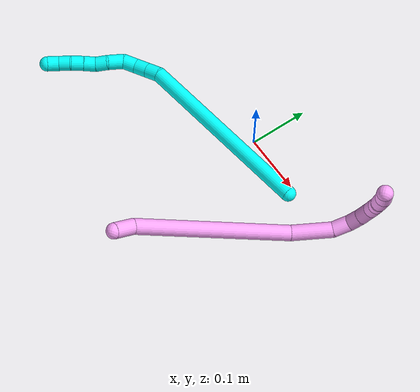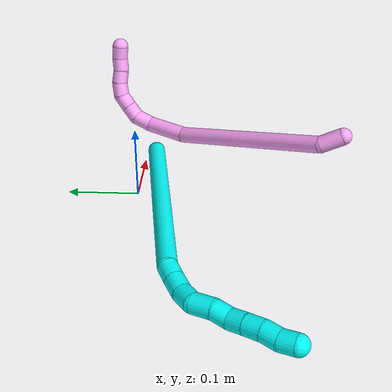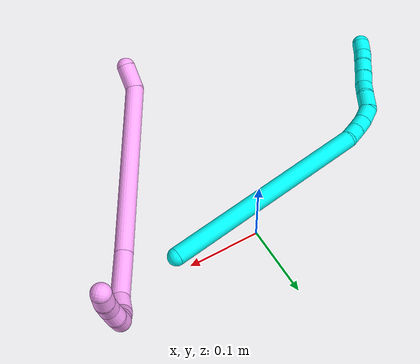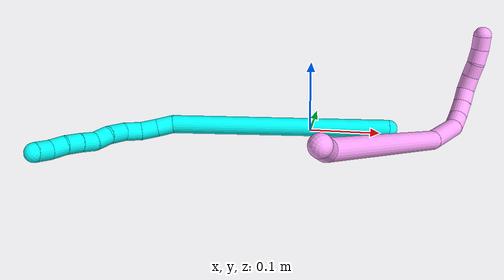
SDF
<sdf version="1.7">
 <world name="default">
  <model name="photoneo_s_sensor">
   <static>1</static>
   <pose>0 0 2 1.57079 1.57079 3.14159</pose>
   <link name="link">
    <inertial><mass>0.1</mass></inertial>
    <sensor name="sensor" type="depth">
     <update_rate>30</update_rate>
     <camera>
      <horizontal_fov>1.22</horizontal_fov>
      <image><width>1920</width><height>1200</height><format>B8G8R8</format></image>
      <clip><near>0.1</near><far>4</far></clip>
      <depth_camera><output>points</output></depth_camera>
     </camera>
     <plugin name="camera_plugin" filename="libgazebo_ros_depth_camera.so">
      <baseline>0.2</baseline>
      <alwaysOn>1</alwaysOn>
      <updateRate>0.0</updateRate>
      <cameraName>camera_ir</cameraName>
      <imageTopicName>/camera/color/image_raw</imageTopicName>
      <cameraInfoTopicName>/camera/color/camera_info</cameraInfoTopicName>
      <depthImageTopicName>/camera/depth/image_raw</depthImageTopicName>
      <depthImageCameraInfoTopicName>/camera/depth/camera_info</depthImageCameraInfoTopicName>
      <pointCloudTopicName>/camera/depth/points</pointCloudTopicName>
      <frameName>fr_optical</frameName>
      <pointCloudCutoff>0.1</pointCloudCutoff>
      <pointCloudCutoffMax>2.0</pointCloudCutoffMax>
      <distortionK1>0</distortionK1>
      <distortionK2>0</distortionK2>
      <distortionK3>0</distortionK3>
      <distortionT1>0</distortionT1>
      <distortionT2>0</distortionT2>
      <CxPrime>0</CxPrime>
      <Cx>0</Cx>
      <Cy>0</Cy>
      <focalLength>0</focalLength>
      <hackBaseline>0</hackBaseline>
     </plugin>
    </sensor>
   </link>
  </model>
  <model name="bin">
   <static>1</static>
   <link name="bottom">
    <collision name="collision-bottom">
     <pose>0 0 -0.01 0 -0 0</pose>
     <geometry><box><size>0.8 0.6 0.02</size></box></geometry>
     <surface>
      <friction><ode><mu>100</mu><mu2>100</mu2></ode></friction>
      <contact><collide_bitmask>65535</collide_bitmask></contact>
     </surface>
    </collision>
   </link>
   <link name="west_wall">
    <collision name="collision-west_wall">
     <pose>-0.41 0 0.1 0 -0 0</pose>
     <geometry><box><size>0.02 0.6 0.2</size></box></geometry>
     <surface>
      <friction><ode><mu>100</mu><mu2>100</mu2></ode></friction>
      <contact><collide_bitmask>65535</collide_bitmask></contact>
     </surface>
    </collision>
   </link>
   <link name="east_wall">
    <collision name="collision-east_wall">
     <pose>0.41 0 0.1 0 -0 0</pose>
     <geometry><box><size>0.02 0.6 0.2</size></box></geometry>
     <surface>
      <friction><ode><mu>100</mu><mu2>100</mu2></ode></friction>
      <contact><collide_bitmask>65535</collide_bitmask></contact>
     </surface>
    </collision>
   </link>
   <link name="south_wall">
    <collision name="collision-south_wall">
     <pose>0 -0.31 0.1 0 -0 0</pose>
     <geometry><box><size>0.8 0.02 0.2</size></box></geometry>
     <surface>
      <friction><ode><mu>100</mu><mu2>100</mu2></ode></friction>
      <contact><collide_bitmask>65535</collide_bitmask></contact>
     </surface>
    </collision>
   </link>
   <link name="north_wall">
    <collision name="collision-north_wall">
     <pose>0 0.31 0.1 0 -0 0</pose>
     <geometry><box><size>0.8 0.02 0.2</size></box></geometry>
     <surface>
      <friction><ode><mu>100</mu><mu2>100</mu2></ode></friction>
      <contact><collide_bitmask>65535</collide_bitmask></contact>
     </surface>
    </collision>
   </link>
  </model>
  <model name="3">
   <static>0</static>
   <link name="3">
    <collision name="collision-cylinder-e_1_1_4">
     <pose>-0.032639 -0.071654 0.129314 0.505994 -0.217286 -0.056384</pose>
     <geometry><cylinder><radius>0.0125</radius><length>0.302799</length></cylinder></geometry>
     <surface>
      <friction><ode><mu>1.16</mu><mu2>1.16</mu2><slip1>0</slip1><slip2>0</slip2></ode></friction>
      <contact><ode><kp>1e+06</kp><kd>1</kd><max_vel>0</max_vel><min_depth>0.001</min_depth></ode></contact>
     </surface>
    </collision>
    <visual name="visual-cylinder-e_1_1_4">
     <pose>-0.032639 -0.071654 0.129314 0.505994 -0.217286 -0.056384</pose>
     <geometry><cylinder><radius>0.0125</radius><length>0.302799</length></cylinder></geometry>
     <material><ambient>0.003922 1 0.996078 1</ambient></material>
    </visual>
    <collision name="collision-cylinder-e_2_4_5">
     <pose>-0.070382 -0.145748 0.268379 0.245176 -0.469931 -0.058971</pose>
     <geometry><cylinder><radius>0.0125</radius><length>0.022546</length></cylinder></geometry>
     <surface>
      <friction><ode><mu>1.16</mu><mu2>1.16</mu2><slip1>0</slip1><slip2>0</slip2></ode></friction>
      <contact><ode><kp>1e+06</kp><kd>1</kd><max_vel>0</max_vel><min_depth>0.001</min_depth></ode></contact>
     </surface>
    </collision>
    <visual name="visual-cylinder-e_2_4_5">
     <pose>-0.070382 -0.145748 0.268379 0.245176 -0.469931 -0.058971</pose>
     <geometry><cylinder><radius>0.0125</radius><length>0.022546</length></cylinder></geometry>
     <material><ambient>0.003922 1 0.996078 1</ambient></material>
    </visual>
    <collision name="collision-cylinder-e_3_5_6">
     <pose>-0.080954 -0.150933 0.287602 0.282034 -0.506184 -0.073399</pose>
     <geometry><cylinder><radius>0.0125</radius><length>0.022552</length></cylinder></geometry>
     <surface>
      <friction><ode><mu>1.16</mu><mu2>1.16</mu2><slip1>0</slip1><slip2>0</slip2></ode></friction>
      <contact><ode><kp>1e+06</kp><kd>1</kd><max_vel>0</max_vel><min_depth>0.001</min_depth></ode></contact>
     </surface>
    </collision>
    <visual name="visual-cylinder-e_3_5_6">
     <pose>-0.080954 -0.150933 0.287602 0.282034 -0.506184 -0.073399</pose>
     <geometry><cylinder><radius>0.0125</radius><length>0.022552</length></cylinder></geometry>
     <material><ambient>0.003922 1 0.996078 1</ambient></material>
    </visual>
    <collision name="collision-cylinder-e_4_6_7">
     <pose>-0.093652 -0.157917 0.305026 0.489792 -0.676189 -0.175285</pose>
     <geometry><cylinder><radius>0.0125</radius><length>0.023108</length></cylinder></geometry>
     <surface>
      <friction><ode><mu>1.16</mu><mu2>1.16</mu2><slip1>0</slip1><slip2>0</slip2></ode></friction>
      <contact><ode><kp>1e+06</kp><kd>1</kd><max_vel>0</max_vel><min_depth>0.001</min_depth></ode></contact>
     </surface>
    </collision>
    <visual name="visual-cylinder-e_4_6_7">
     <pose>-0.093652 -0.157917 0.305026 0.489792 -0.676189 -0.175285</pose>
     <geometry><cylinder><radius>0.0125</radius><length>0.023108</length></cylinder></geometry>
     <material><ambient>0.003922 1 0.996078 1</ambient></material>
    </visual>
    <collision name="collision-cylinder-e_5_7_8">
     <pose>-0.113091 -0.163522 0.318 0.265654 -1.16788 -0.176131</pose>
     <geometry><cylinder><radius>0.0125</radius><length>0.026543</length></cylinder></geometry>
     <surface>
      <friction><ode><mu>1.16</mu><mu2>1.16</mu2><slip1>0</slip1><slip2>0</slip2></ode></friction>
      <contact><ode><kp>1e+06</kp><kd>1</kd><max_vel>0</max_vel><min_depth>0.001</min_depth></ode></contact>
     </surface>
    </collision>
    <visual name="visual-cylinder-e_5_7_8">
     <pose>-0.113091 -0.163522 0.318 0.265654 -1.16788 -0.176131</pose>
     <geometry><cylinder><radius>0.0125</radius><length>0.026543</length></cylinder></geometry>
     <material><ambient>0.003922 1 0.996078 1</ambient></material>
    </visual>
    <collision name="collision-cylinder-e_6_8_9">
     <pose>-0.133924 -0.164234 0.328766 -0.113447 -0.980154 0.060569</pose>
     <geometry><cylinder><radius>0.0125</radius><length>0.020766</length></cylinder></geometry>
     <surface>
      <friction><ode><mu>1.16</mu><mu2>1.16</mu2><slip1>0</slip1><slip2>0</slip2></ode></friction>
      <contact><ode><kp>1e+06</kp><kd>1</kd><max_vel>0</max_vel><min_depth>0.001</min_depth></ode></contact>
     </surface>
    </collision>
    <visual name="visual-cylinder-e_6_8_9">
     <pose>-0.133924 -0.164234 0.328766 -0.113447 -0.980154 0.060569</pose>
     <geometry><cylinder><radius>0.0125</radius><length>0.020766</length></cylinder></geometry>
     <material><ambient>0.003922 1 0.996078 1</ambient></material>
    </visual>
    <collision name="collision-cylinder-e_7_9_10">
     <pose>-0.151541 -0.165972 0.338966 0.492854 -1.05859 -0.29219</pose>
     <geometry><cylinder><radius>0.0125</radius><length>0.020635</length></cylinder></geometry>
     <surface>
      <friction><ode><mu>1.16</mu><mu2>1.16</mu2><slip1>0</slip1><slip2>0</slip2></ode></friction>
      <contact><ode><kp>1e+06</kp><kd>1</kd><max_vel>0</max_vel><min_depth>0.001</min_depth></ode></contact>
     </surface>
    </collision>
    <visual name="visual-cylinder-e_7_9_10">
     <pose>-0.151541 -0.165972 0.338966 0.492854 -1.05859 -0.29219</pose>
     <geometry><cylinder><radius>0.0125</radius><length>0.020635</length></cylinder></geometry>
     <material><ambient>0.003922 1 0.996078 1</ambient></material>
    </visual>
    <collision name="collision-cylinder-e_8_10_11">
     <pose>-0.169799 -0.170186 0.348023 0.37692 -1.08011 -0.22769</pose>
     <geometry><cylinder><radius>0.0125</radius><length>0.021007</length></cylinder></geometry>
     <surface>
      <friction><ode><mu>1.16</mu><mu2>1.16</mu2><slip1>0</slip1><slip2>0</slip2></ode></friction>
      <contact><ode><kp>1e+06</kp><kd>1</kd><max_vel>0</max_vel><min_depth>0.001</min_depth></ode></contact>
     </surface>
    </collision>
    <visual name="visual-cylinder-e_8_10_11">
     <pose>-0.169799 -0.170186 0.348023 0.37692 -1.08011 -0.22769</pose>
     <geometry><cylinder><radius>0.0125</radius><length>0.021007</length></cylinder></geometry>
     <material><ambient>0.003922 1 0.996078 1</ambient></material>
    </visual>
    <collision name="collision-cylinder-e_9_11_12">
     <pose>-0.187315 -0.172694 0.358241 0.121623 -0.969738 -0.06413</pose>
     <geometry><cylinder><radius>0.0125</radius><length>0.020009</length></cylinder></geometry>
     <surface>
      <friction><ode><mu>1.16</mu><mu2>1.16</mu2><slip1>0</slip1><slip2>0</slip2></ode></friction>
      <contact><ode><kp>1e+06</kp><kd>1</kd><max_vel>0</max_vel><min_depth>0.001</min_depth></ode></contact>
     </surface>
    </collision>
    <visual name="visual-cylinder-e_9_11_12">
     <pose>-0.187315 -0.172694 0.358241 0.121623 -0.969738 -0.06413</pose>
     <geometry><cylinder><radius>0.0125</radius><length>0.020009</length></cylinder></geometry>
     <material><ambient>0.003922 1 0.996078 1</ambient></material>
    </visual>
    <collision name="collision-cylinder-e_10_12_2">
     <pose>-0.204813 -0.17485 0.367417 0.391428 -1.17619 -0.262863</pose>
     <geometry><cylinder><radius>0.0125</radius><length>0.020034</length></cylinder></geometry>
     <surface>
      <friction><ode><mu>1.16</mu><mu2>1.16</mu2><slip1>0</slip1><slip2>0</slip2></ode></friction>
      <contact><ode><kp>1e+06</kp><kd>1</kd><max_vel>0</max_vel><min_depth>0.001</min_depth></ode></contact>
     </surface>
    </collision>
    <visual name="visual-cylinder-e_10_12_2">
     <pose>-0.204813 -0.17485 0.367417 0.391428 -1.17619 -0.262863</pose>
     <geometry><cylinder><radius>0.0125</radius><length>0.020034</length></cylinder></geometry>
     <material><ambient>0.003922 1 0.996078 1</ambient></material>
    </visual>
    <collision name="collision-sphere-2">
     <pose>-0.214061 -0.176319 0.370977 0 -0 0</pose>
     <geometry><sphere><radius>0.0125</radius></sphere></geometry>
     <surface>
      <friction><ode><mu>1.16</mu><mu2>1.16</mu2><slip1>0</slip1><slip2>0</slip2></ode></friction>
      <contact><ode><kp>1e+06</kp><kd>1</kd><max_vel>0</max_vel><min_depth>0.001</min_depth></ode></contact>
     </surface>
    </collision>
    <visual name="visual-sphere-2">
     <pose>-0.214061 -0.176319 0.370977 0 -0 0</pose>
     <geometry><sphere><radius>0.0125</radius></sphere></geometry>
     <material><ambient>0.003922 1 0.996078 1</ambient></material>
    </visual>
    <collision name="collision-sphere-12">
     <pose>-0.195566 -0.173381 0.363857 0 -0 0</pose>
     <geometry><sphere><radius>0.0125</radius></sphere></geometry>
     <surface>
      <friction><ode><mu>1.16</mu><mu2>1.16</mu2><slip1>0</slip1><slip2>0</slip2></ode></friction>
      <contact><ode><kp>1e+06</kp><kd>1</kd><max_vel>0</max_vel><min_depth>0.001</min_depth></ode></contact>
     </surface>
    </collision>
    <visual name="visual-sphere-12">
     <pose>-0.195566 -0.173381 0.363857 0 -0 0</pose>
     <geometry><sphere><radius>0.0125</radius></sphere></geometry>
     <material><ambient>0.003922 1 0.996078 1</ambient></material>
    </visual>
    <collision name="collision-sphere-11">
     <pose>-0.179063 -0.172008 0.352625 0 -0 0</pose>
     <geometry><sphere><radius>0.0125</radius></sphere></geometry>
     <surface>
      <friction><ode><mu>1.16</mu><mu2>1.16</mu2><slip1>0</slip1><slip2>0</slip2></ode></friction>
      <contact><ode><kp>1e+06</kp><kd>1</kd><max_vel>0</max_vel><min_depth>0.001</min_depth></ode></contact>
     </surface>
    </collision>
    <visual name="visual-sphere-11">
     <pose>-0.179063 -0.172008 0.352625 0 -0 0</pose>
     <geometry><sphere><radius>0.0125</radius></sphere></geometry>
     <material><ambient>0.003922 1 0.996078 1</ambient></material>
    </visual>
    <collision name="collision-sphere-10">
     <pose>-0.160535 -0.168364 0.343421 0 -0 0</pose>
     <geometry><sphere><radius>0.0125</radius></sphere></geometry>
     <surface>
      <friction><ode><mu>1.16</mu><mu2>1.16</mu2><slip1>0</slip1><slip2>0</slip2></ode></friction>
      <contact><ode><kp>1e+06</kp><kd>1</kd><max_vel>0</max_vel><min_depth>0.001</min_depth></ode></contact>
     </surface>
    </collision>
    <visual name="visual-sphere-10">
     <pose>-0.160535 -0.168364 0.343421 0 -0 0</pose>
     <geometry><sphere><radius>0.0125</radius></sphere></geometry>
     <material><ambient>0.003922 1 0.996078 1</ambient></material>
    </visual>
    <collision name="collision-sphere-9">
     <pose>-0.142548 -0.16358 0.334511 0 -0 0</pose>
     <geometry><sphere><radius>0.0125</radius></sphere></geometry>
     <surface>
      <friction><ode><mu>1.16</mu><mu2>1.16</mu2><slip1>0</slip1><slip2>0</slip2></ode></friction>
      <contact><ode><kp>1e+06</kp><kd>1</kd><max_vel>0</max_vel><min_depth>0.001</min_depth></ode></contact>
     </surface>
    </collision>
    <visual name="visual-sphere-9">
     <pose>-0.142548 -0.16358 0.334511 0 -0 0</pose>
     <geometry><sphere><radius>0.0125</radius></sphere></geometry>
     <material><ambient>0.003922 1 0.996078 1</ambient></material>
    </visual>
    <collision name="collision-sphere-4">
     <pose>-0.065277 -0.143309 0.258628 0 -0 0</pose>
     <geometry><sphere><radius>0.0125</radius></sphere></geometry>
     <surface>
      <friction><ode><mu>1.16</mu><mu2>1.16</mu2><slip1>0</slip1><slip2>0</slip2></ode></friction>
      <contact><ode><kp>1e+06</kp><kd>1</kd><max_vel>0</max_vel><min_depth>0.001</min_depth></ode></contact>
     </surface>
    </collision>
    <visual name="visual-sphere-4">
     <pose>-0.065277 -0.143309 0.258628 0 -0 0</pose>
     <geometry><sphere><radius>0.0125</radius></sphere></geometry>
     <material><ambient>0.003922 1 0.996078 1</ambient></material>
    </visual>
    <collision name="collision-sphere-1">
     <geometry><sphere><radius>0.0125</radius></sphere></geometry>
     <surface>
      <friction><ode><mu>1.16</mu><mu2>1.16</mu2><slip1>0</slip1><slip2>0</slip2></ode></friction>
      <contact><ode><kp>1e+06</kp><kd>1</kd><max_vel>0</max_vel><min_depth>0.001</min_depth></ode></contact>
     </surface>
    </collision>
    <visual name="visual-sphere-1">
     <geometry><sphere><radius>0.0125</radius></sphere></geometry>
     <material><ambient>0.003922 1 0.996078 1</ambient></material>
    </visual>
    <collision name="collision-sphere-8">
     <pose>-0.1253 -0.164889 0.323021 0 -0 0</pose>
     <geometry><sphere><radius>0.0125</radius></sphere></geometry>
     <surface>
      <friction><ode><mu>1.16</mu><mu2>1.16</mu2><slip1>0</slip1><slip2>0</slip2></ode></friction>
      <contact><ode><kp>1e+06</kp><kd>1</kd><max_vel>0</max_vel><min_depth>0.001</min_depth></ode></contact>
     </surface>
    </collision>
    <visual name="visual-sphere-8">
     <pose>-0.1253 -0.164889 0.323021 0 -0 0</pose>
     <geometry><sphere><radius>0.0125</radius></sphere></geometry>
     <material><ambient>0.003922 1 0.996078 1</ambient></material>
    </visual>
    <collision name="collision-sphere-5">
     <pose>-0.075487 -0.148188 0.278129 0 -0 0</pose>
     <geometry><sphere><radius>0.0125</radius></sphere></geometry>
     <surface>
      <friction><ode><mu>1.16</mu><mu2>1.16</mu2><slip1>0</slip1><slip2>0</slip2></ode></friction>
      <contact><ode><kp>1e+06</kp><kd>1</kd><max_vel>0</max_vel><min_depth>0.001</min_depth></ode></contact>
     </surface>
    </collision>
    <visual name="visual-sphere-5">
     <pose>-0.075487 -0.148188 0.278129 0 -0 0</pose>
     <geometry><sphere><radius>0.0125</radius></sphere></geometry>
     <material><ambient>0.003922 1 0.996078 1</ambient></material>
    </visual>
    <collision name="collision-sphere-6">
     <pose>-0.086421 -0.153677 0.297074 0 -0 0</pose>
     <geometry><sphere><radius>0.0125</radius></sphere></geometry>
     <surface>
      <friction><ode><mu>1.16</mu><mu2>1.16</mu2><slip1>0</slip1><slip2>0</slip2></ode></friction>
      <contact><ode><kp>1e+06</kp><kd>1</kd><max_vel>0</max_vel><min_depth>0.001</min_depth></ode></contact>
     </surface>
    </collision>
    <visual name="visual-sphere-6">
     <pose>-0.086421 -0.153677 0.297074 0 -0 0</pose>
     <geometry><sphere><radius>0.0125</radius></sphere></geometry>
     <material><ambient>0.003922 1 0.996078 1</ambient></material>
    </visual>
    <collision name="collision-sphere-7">
     <pose>-0.100883 -0.162156 0.312978 0 -0 0</pose>
     <geometry><sphere><radius>0.0125</radius></sphere></geometry>
     <surface>
      <friction><ode><mu>1.16</mu><mu2>1.16</mu2><slip1>0</slip1><slip2>0</slip2></ode></friction>
      <contact><ode><kp>1e+06</kp><kd>1</kd><max_vel>0</max_vel><min_depth>0.001</min_depth></ode></contact>
     </surface>
    </collision>
    <visual name="visual-sphere-7">
     <pose>-0.100883 -0.162156 0.312978 0 -0 0</pose>
     <geometry><sphere><radius>0.0125</radius></sphere></geometry>
     <material><ambient>0.003922 1 0.996078 1</ambient></material>
    </visual>
    <inertial>
     <pose>-0.071576 -0.10749 0.205688 0 -0 0</pose>
     <mass>0.5</mass>
     <inertia>
      <ixx>0.002131</ixx>
      <ixy>0</ixy>
      <ixz>0</ixz>
      <iyy>0.001917</iyy>
      <iyz>0</iyz>
      <izz>0.001645</izz>
     </inertia>
    </inertial>
   </link>
   <pose>0.11164 -0.015044 0.012245 -2.10275 0.199539 1.49848</pose>
  </model>
  <model name="4">
   <static>0</static>
   <link name="4">
    <collision name="collision-cylinder-e_1_1_4">
     <pose>0.011957 0.007412 -0.010134 -2.5101 0.760986 -1.77188</pose>
     <geometry><cylinder><radius>0.0125</radius><length>0.034675</length></cylinder></geometry>
     <surface>
      <friction><ode><mu>1.16</mu><mu2>1.16</mu2><slip1>0</slip1><slip2>0</slip2></ode></friction>
      <contact><ode><kp>1e+06</kp><kd>1</kd><max_vel>0</max_vel><min_depth>0.001</min_depth></ode></contact>
     </surface>
    </collision>
    <visual name="visual-cylinder-e_1_1_4">
     <pose>0.011957 0.007412 -0.010134 -2.5101 0.760986 -1.77188</pose>
     <geometry><cylinder><radius>0.0125</radius><length>0.034675</length></cylinder></geometry>
     <material><ambient>1 0.65098 0.996078 1</ambient></material>
    </visual>
    <collision name="collision-cylinder-e_2_4_5">
     <pose>0.08803 0.111503 -0.058964 -1.95152 0.551889 -0.792446</pose>
     <geometry><cylinder><radius>0.0125</radius><length>0.244583</length></cylinder></geometry>
     <surface>
      <friction><ode><mu>1.16</mu><mu2>1.16</mu2><slip1>0</slip1><slip2>0</slip2></ode></friction>
      <contact><ode><kp>1e+06</kp><kd>1</kd><max_vel>0</max_vel><min_depth>0.001</min_depth></ode></contact>
     </surface>
    </collision>
    <visual name="visual-cylinder-e_2_4_5">
     <pose>0.08803 0.111503 -0.058964 -1.95152 0.551889 -0.792446</pose>
     <geometry><cylinder><radius>0.0125</radius><length>0.244583</length></cylinder></geometry>
     <material><ambient>1 0.65098 0.996078 1</ambient></material>
    </visual>
    <collision name="collision-cylinder-e_3_5_6">
     <pose>0.162281 0.237011 -0.109901 -1.97234 0.31294 -0.468021</pose>
     <geometry><cylinder><radius>0.0125</radius><length>0.065838</length></cylinder></geometry>
     <surface>
      <friction><ode><mu>1.16</mu><mu2>1.16</mu2><slip1>0</slip1><slip2>0</slip2></ode></friction>
      <contact><ode><kp>1e+06</kp><kd>1</kd><max_vel>0</max_vel><min_depth>0.001</min_depth></ode></contact>
     </surface>
    </collision>
    <visual name="visual-cylinder-e_3_5_6">
     <pose>0.162281 0.237011 -0.109901 -1.97234 0.31294 -0.468021</pose>
     <geometry><cylinder><radius>0.0125</radius><length>0.065838</length></cylinder></geometry>
     <material><ambient>1 0.65098 0.996078 1</ambient></material>
    </visual>
    <collision name="collision-cylinder-e_4_6_7">
     <pose>0.172537 0.277404 -0.129891 -2.16115 0.008727 -0.016352</pose>
     <geometry><cylinder><radius>0.0125</radius><length>0.027842</length></cylinder></geometry>
     <surface>
      <friction><ode><mu>1.16</mu><mu2>1.16</mu2><slip1>0</slip1><slip2>0</slip2></ode></friction>
      <contact><ode><kp>1e+06</kp><kd>1</kd><max_vel>0</max_vel><min_depth>0.001</min_depth></ode></contact>
     </surface>
    </collision>
    <visual name="visual-cylinder-e_4_6_7">
     <pose>0.172537 0.277404 -0.129891 -2.16115 0.008727 -0.016352</pose>
     <geometry><cylinder><radius>0.0125</radius><length>0.027842</length></cylinder></geometry>
     <material><ambient>1 0.65098 0.996078 1</ambient></material>
    </visual>
    <collision name="collision-cylinder-e_5_7_8">
     <pose>0.167372 0.297905 -0.141993 -2.0241 -0.488792 0.75908</pose>
     <geometry><cylinder><radius>0.0125</radius><length>0.022517</length></cylinder></geometry>
     <surface>
      <friction><ode><mu>1.16</mu><mu2>1.16</mu2><slip1>0</slip1><slip2>0</slip2></ode></friction>
      <contact><ode><kp>1e+06</kp><kd>1</kd><max_vel>0</max_vel><min_depth>0.001</min_depth></ode></contact>
     </surface>
    </collision>
    <visual name="visual-cylinder-e_5_7_8">
     <pose>0.167372 0.297905 -0.141993 -2.0241 -0.488792 0.75908</pose>
     <geometry><cylinder><radius>0.0125</radius><length>0.022517</length></cylinder></geometry>
     <material><ambient>1 0.65098 0.996078 1</ambient></material>
    </visual>
    <collision name="collision-cylinder-e_6_8_9">
     <pose>0.15626 0.314787 -0.150711 -2.07307 -0.571144 0.921255</pose>
     <geometry><cylinder><radius>0.0125</radius><length>0.021553</length></cylinder></geometry>
     <surface>
      <friction><ode><mu>1.16</mu><mu2>1.16</mu2><slip1>0</slip1><slip2>0</slip2></ode></friction>
      <contact><ode><kp>1e+06</kp><kd>1</kd><max_vel>0</max_vel><min_depth>0.001</min_depth></ode></contact>
     </surface>
    </collision>
    <visual name="visual-cylinder-e_6_8_9">
     <pose>0.15626 0.314787 -0.150711 -2.07307 -0.571144 0.921255</pose>
     <geometry><cylinder><radius>0.0125</radius><length>0.021553</length></cylinder></geometry>
     <material><ambient>1 0.65098 0.996078 1</ambient></material>
    </visual>
    <collision name="collision-cylinder-e_7_9_10">
     <pose>0.14169 0.328935 -0.155764 -1.68131 -0.951025 1.044</pose>
     <geometry><cylinder><radius>0.0125</radius><length>0.021483</length></cylinder></geometry>
     <surface>
      <friction><ode><mu>1.16</mu><mu2>1.16</mu2><slip1>0</slip1><slip2>0</slip2></ode></friction>
      <contact><ode><kp>1e+06</kp><kd>1</kd><max_vel>0</max_vel><min_depth>0.001</min_depth></ode></contact>
     </surface>
    </collision>
    <visual name="visual-cylinder-e_7_9_10">
     <pose>0.14169 0.328935 -0.155764 -1.68131 -0.951025 1.044</pose>
     <geometry><cylinder><radius>0.0125</radius><length>0.021483</length></cylinder></geometry>
     <material><ambient>1 0.65098 0.996078 1</ambient></material>
    </visual>
    <collision name="collision-cylinder-e_8_10_11">
     <pose>0.12367 0.339501 -0.154969 -1.24326 -1.10953 0.835582</pose>
     <geometry><cylinder><radius>0.0125</radius><length>0.020718</length></cylinder></geometry>
     <surface>
      <friction><ode><mu>1.16</mu><mu2>1.16</mu2><slip1>0</slip1><slip2>0</slip2></ode></friction>
      <contact><ode><kp>1e+06</kp><kd>1</kd><max_vel>0</max_vel><min_depth>0.001</min_depth></ode></contact>
     </surface>
    </collision>
    <visual name="visual-cylinder-e_8_10_11">
     <pose>0.12367 0.339501 -0.154969 -1.24326 -1.10953 0.835582</pose>
     <geometry><cylinder><radius>0.0125</radius><length>0.020718</length></cylinder></geometry>
     <material><ambient>1 0.65098 0.996078 1</ambient></material>
    </visual>
    <collision name="collision-cylinder-e_9_11_12">
     <pose>0.10548 0.349056 -0.154138 -1.69583 -1.04021 1.15161</pose>
     <geometry><cylinder><radius>0.0125</radius><length>0.020671</length></cylinder></geometry>
     <surface>
      <friction><ode><mu>1.16</mu><mu2>1.16</mu2><slip1>0</slip1><slip2>0</slip2></ode></friction>
      <contact><ode><kp>1e+06</kp><kd>1</kd><max_vel>0</max_vel><min_depth>0.001</min_depth></ode></contact>
     </surface>
    </collision>
    <visual name="visual-cylinder-e_9_11_12">
     <pose>0.10548 0.349056 -0.154138 -1.69583 -1.04021 1.15161</pose>
     <geometry><cylinder><radius>0.0125</radius><length>0.020671</length></cylinder></geometry>
     <material><ambient>1 0.65098 0.996078 1</ambient></material>
    </visual>
    <collision name="collision-cylinder-e_10_12_2">
     <pose>0.087 0.357344 -0.155118 -1.67625 -1.25592 1.35785</pose>
     <geometry><cylinder><radius>0.0125</radius><length>0.020121</length></cylinder></geometry>
     <surface>
      <friction><ode><mu>1.16</mu><mu2>1.16</mu2><slip1>0</slip1><slip2>0</slip2></ode></friction>
      <contact><ode><kp>1e+06</kp><kd>1</kd><max_vel>0</max_vel><min_depth>0.001</min_depth></ode></contact>
     </surface>
    </collision>
    <visual name="visual-cylinder-e_10_12_2">
     <pose>0.087 0.357344 -0.155118 -1.67625 -1.25592 1.35785</pose>
     <geometry><cylinder><radius>0.0125</radius><length>0.020121</length></cylinder></geometry>
     <material><ambient>1 0.65098 0.996078 1</ambient></material>
    </visual>
    <collision name="collision-sphere-2">
     <pose>0.077434 0.360442 -0.155446 0 -0 0</pose>
     <geometry><sphere><radius>0.0125</radius></sphere></geometry>
     <surface>
      <friction><ode><mu>1.16</mu><mu2>1.16</mu2><slip1>0</slip1><slip2>0</slip2></ode></friction>
      <contact><ode><kp>1e+06</kp><kd>1</kd><max_vel>0</max_vel><min_depth>0.001</min_depth></ode></contact>
     </surface>
    </collision>
    <visual name="visual-sphere-2">
     <pose>0.077434 0.360442 -0.155446 0 -0 0</pose>
     <geometry><sphere><radius>0.0125</radius></sphere></geometry>
     <material><ambient>1 0.65098 0.996078 1</ambient></material>
    </visual>
    <collision name="collision-sphere-12">
     <pose>0.096566 0.354245 -0.15479 0 -0 0</pose>
     <geometry><sphere><radius>0.0125</radius></sphere></geometry>
     <surface>
      <friction><ode><mu>1.16</mu><mu2>1.16</mu2><slip1>0</slip1><slip2>0</slip2></ode></friction>
      <contact><ode><kp>1e+06</kp><kd>1</kd><max_vel>0</max_vel><min_depth>0.001</min_depth></ode></contact>
     </surface>
    </collision>
    <visual name="visual-sphere-12">
     <pose>0.096566 0.354245 -0.15479 0 -0 0</pose>
     <geometry><sphere><radius>0.0125</radius></sphere></geometry>
     <material><ambient>1 0.65098 0.996078 1</ambient></material>
    </visual>
    <collision name="collision-sphere-11">
     <pose>0.114394 0.343867 -0.153485 0 -0 0</pose>
     <geometry><sphere><radius>0.0125</radius></sphere></geometry>
     <surface>
      <friction><ode><mu>1.16</mu><mu2>1.16</mu2><slip1>0</slip1><slip2>0</slip2></ode></friction>
      <contact><ode><kp>1e+06</kp><kd>1</kd><max_vel>0</max_vel><min_depth>0.001</min_depth></ode></contact>
     </surface>
    </collision>
    <visual name="visual-sphere-11">
     <pose>0.114394 0.343867 -0.153485 0 -0 0</pose>
     <geometry><sphere><radius>0.0125</radius></sphere></geometry>
     <material><ambient>1 0.65098 0.996078 1</ambient></material>
    </visual>
    <collision name="collision-sphere-10">
     <pose>0.132947 0.335136 -0.156452 0 -0 0</pose>
     <geometry><sphere><radius>0.0125</radius></sphere></geometry>
     <surface>
      <friction><ode><mu>1.16</mu><mu2>1.16</mu2><slip1>0</slip1><slip2>0</slip2></ode></friction>
      <contact><ode><kp>1e+06</kp><kd>1</kd><max_vel>0</max_vel><min_depth>0.001</min_depth></ode></contact>
     </surface>
    </collision>
    <visual name="visual-sphere-10">
     <pose>0.132947 0.335136 -0.156452 0 -0 0</pose>
     <geometry><sphere><radius>0.0125</radius></sphere></geometry>
     <material><ambient>1 0.65098 0.996078 1</ambient></material>
    </visual>
    <collision name="collision-sphere-9">
     <pose>0.150434 0.322734 -0.155076 0 -0 0</pose>
     <geometry><sphere><radius>0.0125</radius></sphere></geometry>
     <surface>
      <friction><ode><mu>1.16</mu><mu2>1.16</mu2><slip1>0</slip1><slip2>0</slip2></ode></friction>
      <contact><ode><kp>1e+06</kp><kd>1</kd><max_vel>0</max_vel><min_depth>0.001</min_depth></ode></contact>
     </surface>
    </collision>
    <visual name="visual-sphere-9">
     <pose>0.150434 0.322734 -0.155076 0 -0 0</pose>
     <geometry><sphere><radius>0.0125</radius></sphere></geometry>
     <material><ambient>1 0.65098 0.996078 1</ambient></material>
    </visual>
    <collision name="collision-sphere-4">
     <pose>0.023913 0.014824 -0.020267 0 -0 0</pose>
     <geometry><sphere><radius>0.0125</radius></sphere></geometry>
     <surface>
      <friction><ode><mu>1.16</mu><mu2>1.16</mu2><slip1>0</slip1><slip2>0</slip2></ode></friction>
      <contact><ode><kp>1e+06</kp><kd>1</kd><max_vel>0</max_vel><min_depth>0.001</min_depth></ode></contact>
     </surface>
    </collision>
    <visual name="visual-sphere-4">
     <pose>0.023913 0.014824 -0.020267 0 -0 0</pose>
     <geometry><sphere><radius>0.0125</radius></sphere></geometry>
     <material><ambient>1 0.65098 0.996078 1</ambient></material>
    </visual>
    <collision name="collision-sphere-1">
     <geometry><sphere><radius>0.0125</radius></sphere></geometry>
     <surface>
      <friction><ode><mu>1.16</mu><mu2>1.16</mu2><slip1>0</slip1><slip2>0</slip2></ode></friction>
      <contact><ode><kp>1e+06</kp><kd>1</kd><max_vel>0</max_vel><min_depth>0.001</min_depth></ode></contact>
     </surface>
    </collision>
    <visual name="visual-sphere-1">
     <geometry><sphere><radius>0.0125</radius></sphere></geometry>
     <material><ambient>1 0.65098 0.996078 1</ambient></material>
    </visual>
    <collision name="collision-sphere-8">
     <pose>0.162085 0.306841 -0.146346 0 -0 0</pose>
     <geometry><sphere><radius>0.0125</radius></sphere></geometry>
     <surface>
      <friction><ode><mu>1.16</mu><mu2>1.16</mu2><slip1>0</slip1><slip2>0</slip2></ode></friction>
      <contact><ode><kp>1e+06</kp><kd>1</kd><max_vel>0</max_vel><min_depth>0.001</min_depth></ode></contact>
     </surface>
    </collision>
    <visual name="visual-sphere-8">
     <pose>0.162085 0.306841 -0.146346 0 -0 0</pose>
     <geometry><sphere><radius>0.0125</radius></sphere></geometry>
     <material><ambient>1 0.65098 0.996078 1</ambient></material>
    </visual>
    <collision name="collision-sphere-5">
     <pose>0.152147 0.208182 -0.09766 0 -0 0</pose>
     <geometry><sphere><radius>0.0125</radius></sphere></geometry>
     <surface>
      <friction><ode><mu>1.16</mu><mu2>1.16</mu2><slip1>0</slip1><slip2>0</slip2></ode></friction>
      <contact><ode><kp>1e+06</kp><kd>1</kd><max_vel>0</max_vel><min_depth>0.001</min_depth></ode></contact>
     </surface>
    </collision>
    <visual name="visual-sphere-5">
     <pose>0.152147 0.208182 -0.09766 0 -0 0</pose>
     <geometry><sphere><radius>0.0125</radius></sphere></geometry>
     <material><ambient>1 0.65098 0.996078 1</ambient></material>
    </visual>
    <collision name="collision-sphere-6">
     <pose>0.172416 0.26584 -0.122142 0 -0 0</pose>
     <geometry><sphere><radius>0.0125</radius></sphere></geometry>
     <surface>
      <friction><ode><mu>1.16</mu><mu2>1.16</mu2><slip1>0</slip1><slip2>0</slip2></ode></friction>
      <contact><ode><kp>1e+06</kp><kd>1</kd><max_vel>0</max_vel><min_depth>0.001</min_depth></ode></contact>
     </surface>
    </collision>
    <visual name="visual-sphere-6">
     <pose>0.172416 0.26584 -0.122142 0 -0 0</pose>
     <geometry><sphere><radius>0.0125</radius></sphere></geometry>
     <material><ambient>1 0.65098 0.996078 1</ambient></material>
    </visual>
    <collision name="collision-sphere-7">
     <pose>0.172659 0.288968 -0.13764 0 -0 0</pose>
     <geometry><sphere><radius>0.0125</radius></sphere></geometry>
     <surface>
      <friction><ode><mu>1.16</mu><mu2>1.16</mu2><slip1>0</slip1><slip2>0</slip2></ode></friction>
      <contact><ode><kp>1e+06</kp><kd>1</kd><max_vel>0</max_vel><min_depth>0.001</min_depth></ode></contact>
     </surface>
    </collision>
    <visual name="visual-sphere-7">
     <pose>0.172659 0.288968 -0.13764 0 -0 0</pose>
     <geometry><sphere><radius>0.0125</radius></sphere></geometry>
     <material><ambient>1 0.65098 0.996078 1</ambient></material>
    </visual>
    <inertial>
     <pose>0.108214 0.185709 -0.089869 0 -0 0</pose>
     <mass>0.5</mass>
     <inertia>
      <ixx>1.4e-05</ixx>
      <ixy>0</ixy>
      <ixz>0</ixz>
      <iyy>-0.000621</iyy>
      <iyz>0</iyz>
      <izz>-0.001665</izz>
     </inertia>
    </inertial>
   </link>
   <pose>0.039849 -0.288189 0.077775 1.97164 1.22883 1.03779</pose>
  </model>
 </world>
</sdf>
